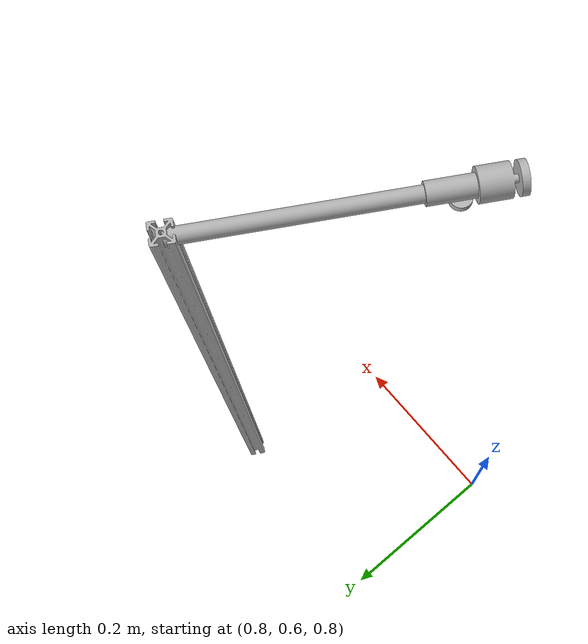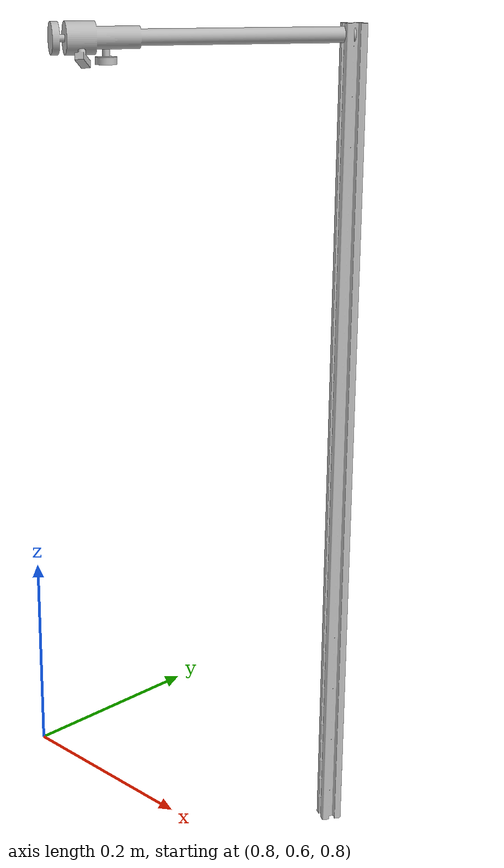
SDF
<sdf version='1.7'>
    <model name='camera_mount'>
    <static>true</static>
    <!-- Add profile -->
    <link name='side_extrusion_20_link'>
      <inertial>
        <pose>1.04516875 0.78628125 1.533585 0.  0.  1.039353543589793</pose>
        <mass>0.0615752</mass> <!-- Fix inertia parameters -->
      <inertia>
        <ixx>9.108e-05</ixx>
        <ixy>0</ixy>
        <ixz>0</ixz>
        <iyy>2.51e-06</iyy>
        <iyz>0</iyz>
        <izz>8.931e-05</izz>
      </inertia>
      </inertial>
      <collision name='side_extrusion_20_link_collision'>
        <pose>1.04516875 0.78628125 1.533585 0.  0.  1.039353543589793</pose>
        <geometry>
          <mesh>
            <scale>.001 .001 .001 </scale>
            <uri>model://side_extrusion_20/meshes/side_extrusion_20.stl</uri>
          </mesh>
        </geometry>
      </collision>
      <visual name='side_extrusion_20_link_visual'>
        <pose>1.04516875 0.78628125 1.533585 0. 0. 1.039353543589793</pose>
        <geometry>
          <mesh>
            <scale>.001 .001 .001 </scale>
            <uri>model://side_extrusion_20/meshes/side_extrusion_20.obj</uri>
          </mesh>
        </geometry>
        <cast_shadows>1</cast_shadows>
      </visual>
    </link>
    <!-- Add camera_mount-extrusion joint -->
    <joint name='camera_mount-to-extrusion' type='fixed'>
      <parent>side_extrusion_20_link</parent>
      <child>camera_mount_link</child>
    </joint>
    <!-- Add camera mount link -->
      <link name='camera_mount_link'>
        <inertial>
          <pose>1.04516875 0.78628125 1.533585 0 -1.5707963267948966 1.039353543589793</pose>
          <mass>0.0615752</mass> <!-- Fix inertia parameters -->
        <inertia>
          <ixx>9.108e-05</ixx>
          <ixy>0</ixy>
          <ixz>0</ixz>
          <iyy>2.51e-06</iyy>
          <iyz>0</iyz>
          <izz>8.931e-05</izz>
        </inertia>
        </inertial>
        <collision name='camera_mount_link_collision'>
          <pose>1.04516875 0.78628125 1.533585 0 -1.5707963267948966 1.039353543589793</pose>
          <geometry>
            <mesh>
              <scale>.001 .001 .001 </scale>
              <uri>model://camera_mount/meshes/camera_mount.stl</uri>
            </mesh>
          </geometry>
        </collision>
        <visual name='camera_mount_link_visual'>
          <pose>1.04516875 0.78628125 1.533585 0 -1.5707963267948966 1.039353543589793</pose>
          <geometry>
            <mesh>
              <scale>.001 .001 .001 </scale>
              <uri>model://camera_mount/meshes/camera_mount.obj</uri>
            </mesh>
          </geometry>
          <cast_shadows>1</cast_shadows>
        </visual>
      </link>
    </model>
  </sdf>
